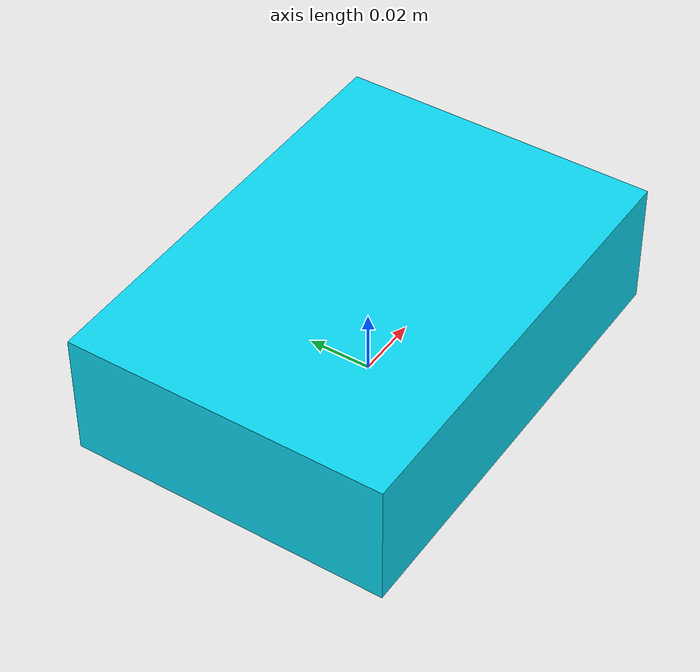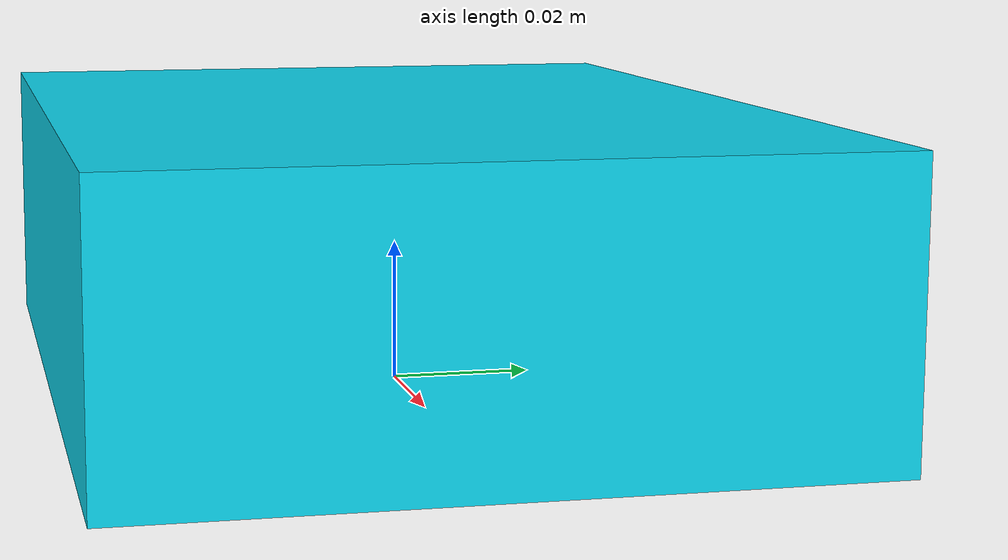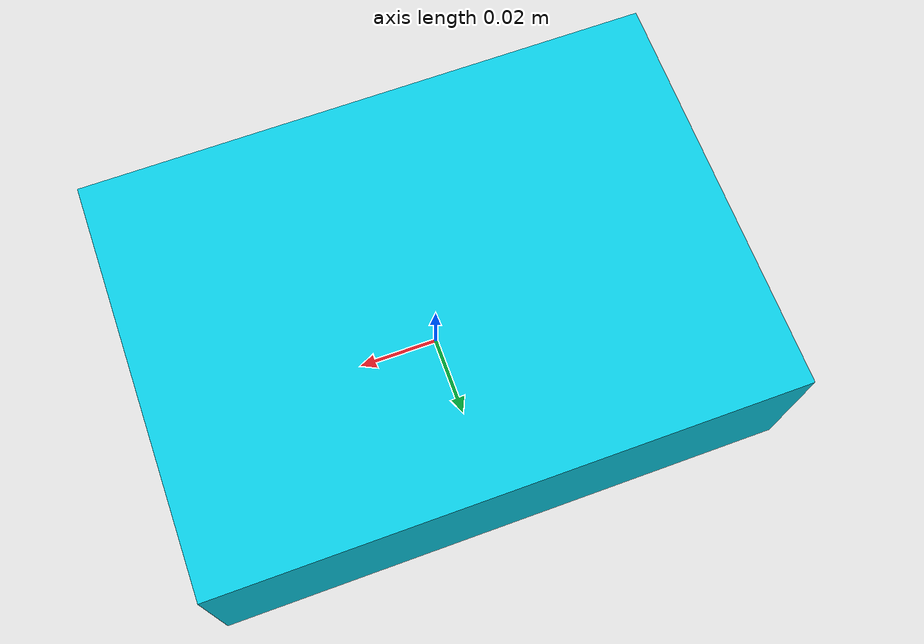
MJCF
<mujoco model="block">
  <compiler angle="radian"/>

  <default>
    <default class="block">
      <geom type="box" condim="4" group="1" friction="0.8 0.02 0.01" mass="0.175"
        solimp="0.95 0.99 0.001" solref="0.01 1.0" gap="0.002"/>
    </default>
  </default>

  <asset>
    <material name="material" rgba="0.05 0.85 0.95 1"/>
  </asset>

  <worldbody>
    <body name="block" pos="0 0 0.02">
      <freejoint name="joint"/>
      <geom name="geom" class="block" size="0.070 0.050 0.02" material="material"/>
    </body>
  </worldbody>
</mujoco>
